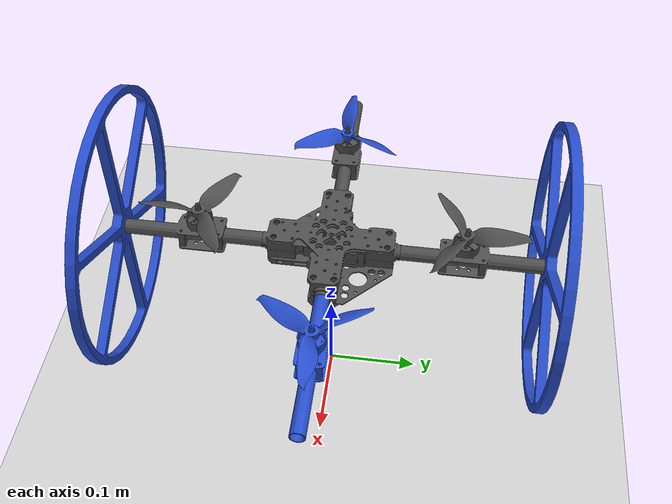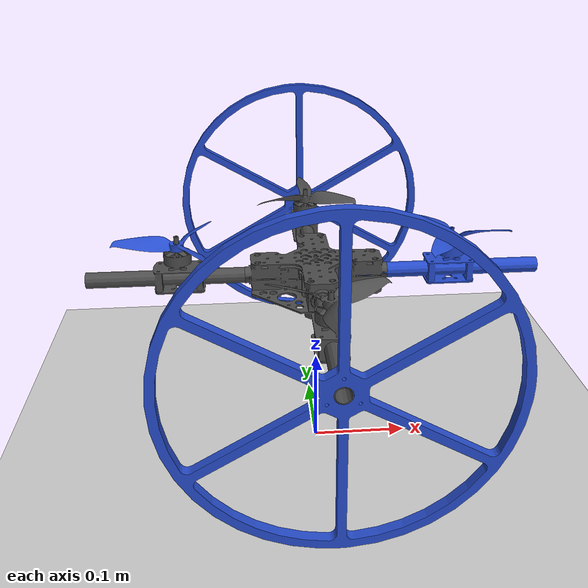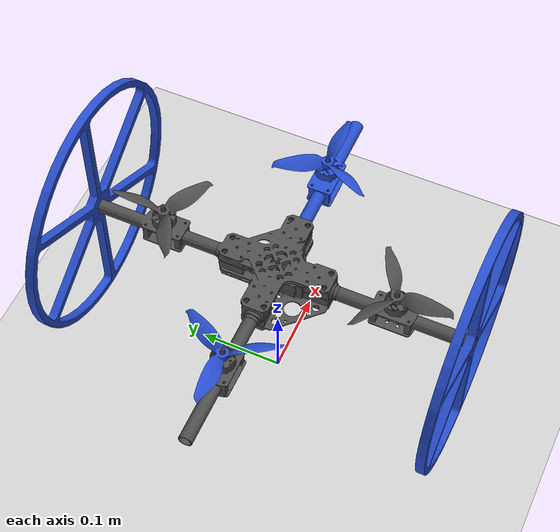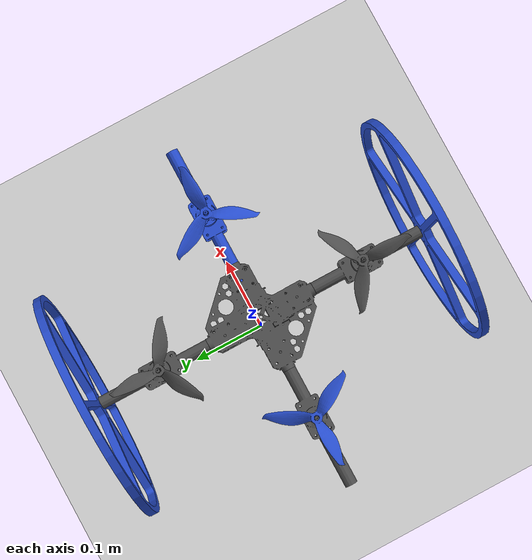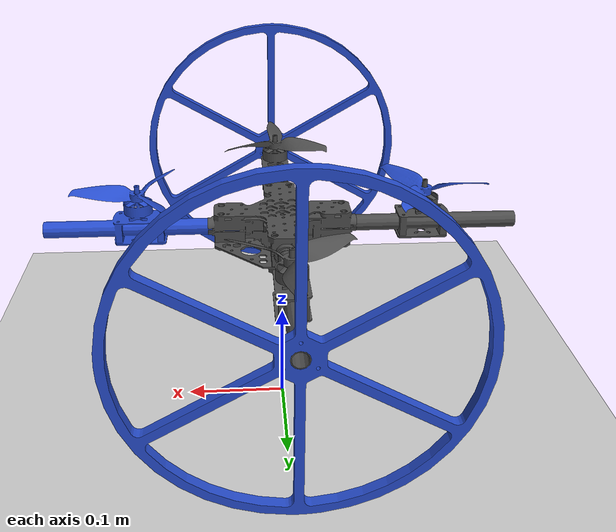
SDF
<?xml version="1.0" ?>
<sdf version="1.5">
  <world name="default">
    <scene>
        <ambient>0.95 0.95 0.95 1</ambient>
        <background>0.98 0.98 0.98 1</background>
        <shadows>true</shadows>
    </scene>

    <include>
      <uri>model://tilt_ropter_hitl</uri>
      <pose>0 0 0.05 0 0 0</pose>
    </include>

    <!-- A global light source -->
    <include>
      <uri>model://sun</uri>
    </include>
    <!-- A ground plane -->
    <include>
      <uri>model://ground_plane</uri>
    </include>
    <include>
      <uri>model://asphalt_plane</uri>
    </include>
    <physics name='default_physics' default='0' type='ode'>
      <gravity>0 0 -9.8066</gravity>
      <ode>
        <solver>
          <type>quick</type>
          <iters>10</iters>
          <sor>1.3</sor>
          <use_dynamic_moi_rescaling>0</use_dynamic_moi_rescaling>
        </solver>
        <constraints>
          <cfm>0</cfm>
          <erp>0.2</erp>
          <contact_max_correcting_vel>100</contact_max_correcting_vel>
          <contact_surface_layer>0.001</contact_surface_layer>
        </constraints>
      </ode>
      <max_step_size>0.004</max_step_size>
      <real_time_factor>1</real_time_factor>
      <real_time_update_rate>250</real_time_update_rate>
      <magnetic_field>6.0e-6 2.3e-5 -4.2e-5</magnetic_field>
    </physics>
    <gui>
      <camera name="user_camera">
        <track_visual>
          <static>true</static>
          <use_model_frame>true</use_model_frame>
          <xyz>-2 -2 1.5</xyz>
          <inherit_yaw>true</inherit_yaw>
        </track_visual>
        <pose>-10 -1 4 0 0.275643 0</pose>
        <view_controller>orbit</view_controller>
        <projection_type>perspective</projection_type>
    </camera>
    </gui>
  </world>
</sdf>

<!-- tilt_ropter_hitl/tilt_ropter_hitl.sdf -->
<!-- Generated from iris.sdf.jinja for use with HITL -->
<sdf version='1.6'>
  <model name='iris'>
    <link name='base_link'>
      <pose>0 0 0.15 0 0 0</pose>
      <inertial>
        <pose>0 0 -0.05 0 0 0</pose>
        <mass>0.8</mass>
        <inertia>
          <ixx>0.029125</ixx>
          <ixy>0</ixy>
          <ixz>0</ixz>
          <iyy>0.029125</iyy>
          <iyz>0</iyz>
          <izz>0.055225</izz>
        </inertia>
      </inertial>

      <collision name='base_link_inertia_collision'>
        <pose>0 0 0 0 0 0</pose>
        <geometry>
          <box>
            <size>0.133 0.133 0.036</size>
          </box>
        </geometry>

        <surface>
          <contact>
            <ode>
              <min_depth>0.001</min_depth>
              <max_vel>0</max_vel>
            </ode>
          </contact>
          <friction>
            <ode/>
          </friction>
        </surface>
      </collision>

      <visual name='base_link_inertia_visual'>
        <pose>0 0 0 0 0 0</pose>
        <geometry>
          <mesh>
            <scale>1 1 1</scale>
            <uri>model://tilt_ropter/meshes/body.STL</uri>
          </mesh>
        </geometry>
        <material>
          <script>
            <name>Gazebo/DarkGrey</name>
            <uri>file://media/materials/scripts/gazebo.material</uri>
          </script>
        </material>
      </visual>
      <gravity>1</gravity>
      <velocity_decay/>
      <self_collide>0</self_collide>
    </link>

    <!-- imu_link -->
    <link name='/imu_link'>
      <pose relative_to='base_link'>0 0 0 0 0 0</pose>
      <inertial>
        <pose>0 0 0 0 0 0</pose>
        <mass>0.015</mass>
        <inertia>
          <ixx>1e-05</ixx>
          <ixy>0</ixy>
          <ixz>0</ixz>
          <iyy>1e-05</iyy>
          <iyz>0</iyz>
          <izz>1e-05</izz>
        </inertia>
      </inertial>
    </link>

    <joint name='/imu_joint' type='revolute'>
      <child>/imu_link</child>
      <parent>base_link</parent>
      <axis>
        <xyz>1 0 0</xyz>
        <limit>
          <lower>0</lower>
          <upper>0</upper>
          <effort>0</effort>
          <velocity>0</velocity>
        </limit>
        <dynamics>
          <spring_reference>0</spring_reference>
          <spring_stiffness>0</spring_stiffness>
        </dynamics>
        <use_parent_model_frame>1</use_parent_model_frame>
      </axis>
    </joint>
    <!-- imu_link -->

    <!-- wheel_0 -->
    <link name='wheel_0'>
      <pose relative_to='base_link'>0 -0.22696 0 1.5708 0 0</pose>
      <inertial>
        <pose>0 0 0 0 0 0</pose>
        <mass>0.2</mass>
        <inertia>
          <ixx>0.002</ixx>
          <ixy>0</ixy>
          <ixz>0</ixz>
          <iyy>0.002</iyy>
          <iyz>0</iyz>
          <izz>0.004</izz>
        </inertia>
      </inertial>

      <collision name='wheel_0_collision'>
        <pose>0 0 0 0 0 0</pose>
        <geometry>
          <cylinder>
            <length>0.01</length>
            <radius>0.15</radius>
          </cylinder>
        </geometry>
        <surface>
          <contact>
            <ode/>
          </contact>
          <friction>
            <ode/>
          </friction>
        </surface>
      </collision>

      <visual name='wheel_0_visual'>
        <pose>0 0 0 0 0 0</pose>
        <geometry>
          <mesh>
            <scale>1 1 1</scale>
            <uri>model://tilt_ropter/meshes/wheel.STL</uri>
          </mesh>
        </geometry>
        <material>
          <script>
            <name>Gazebo/Blue</name>
            <uri>file://media/materials/scripts/gazebo.material</uri>
          </script>
        </material>
      </visual>
      <gravity>1</gravity>
      <velocity_decay/>
      <self_collide>0</self_collide>
    </link>

    <joint name='wheel_0_joint' type='revolute'>
      <child>wheel_0</child>
      <parent>base_link</parent>
      <axis>
        <xyz>0 -1 0</xyz>
        <limit>
          <lower>-1e+16</lower>
          <upper>1e+16</upper>
        </limit>
        <dynamics>
          <spring_reference>0</spring_reference>
          <spring_stiffness>0</spring_stiffness>
        </dynamics>
        <use_parent_model_frame>1</use_parent_model_frame>
      </axis>
    </joint>
    <!-- wheel_0 -->

    <!-- wheel_1 -->
    <link name='wheel_1'>
      <pose relative_to='base_link'>0 0.22696 0 1.5708 0 0</pose>
      <inertial>
        <pose>0 0 0 0 0 0</pose>
        <mass>0.2</mass>
        <inertia>
          <ixx>0.002</ixx>
          <ixy>0</ixy>
          <ixz>0</ixz>
          <iyy>0.002</iyy>
          <iyz>0</iyz>
          <izz>0.004</izz>
        </inertia>
      </inertial>

      <collision name='wheel_1_collision'>
        <pose>0 0 0 0 0 0</pose>
        <geometry>
          <cylinder>
            <length>0.01</length>
            <radius>0.15</radius>
          </cylinder>
        </geometry>
        <surface>
          <contact>
            <ode/>
          </contact>
          <friction>
            <ode/>
          </friction>
        </surface>
      </collision>

      <visual name='wheel_1_visual'>
        <pose>0 0 0 0 0 0</pose>
        <geometry>
          <mesh>
            <scale>1 1 1</scale>
            <uri>model://tilt_ropter/meshes/wheel.STL</uri>
          </mesh>
        </geometry>
        <material>
          <script>
            <name>Gazebo/Blue</name>
            <uri>file://media/materials/scripts/gazebo.material</uri>
          </script>
        </material>
      </visual>
      <gravity>1</gravity>
      <velocity_decay/>
      <self_collide>0</self_collide>
    </link>

    <joint name='wheel_1_joint' type='revolute'>
      <child>wheel_1</child>
      <parent>base_link</parent>
      <axis>
        <xyz>0 -1 0</xyz>
        <limit>
          <lower>-1e+16</lower>
          <upper>1e+16</upper>
        </limit>
        <dynamics>
          <spring_reference>0</spring_reference>
          <spring_stiffness>0</spring_stiffness>
        </dynamics>
        <use_parent_model_frame>1</use_parent_model_frame>
      </axis>
    </joint>

    <!-- tilt_0 -->
    <link name='tilt_0'>
      <pose relative_to='base_link'>0 -0.041958 0 0 0 -1.5708</pose>
      <inertial>
        <pose>0.0 0.0 0.0 0 0 0</pose>
        <mass>0.06</mass>
        <inertia>
          <ixx>0.0001</ixx>
          <ixy>0</ixy>
          <ixz>0</ixz>
          <iyy>0.0001</iyy>
          <iyz>0</iyz>
          <izz>0.0001</izz>
        </inertia>
      </inertial>

      <collision name='tilt_0_collision'>
        <pose>0.095 0 0 0 1.5708 0</pose>
        <geometry>
          <cylinder>
            <length>0.19</length>
            <radius>0.008</radius>
          </cylinder>
        </geometry>
        <surface>
          <contact>
            <ode/>
          </contact>
          <friction>
            <ode/>
          </friction>
        </surface>
      </collision>

      <visual name='tilt_0_visual'>
        <pose>0 0 0 0 0 0</pose>
        <geometry>
          <mesh>
            <scale>1 1 1</scale>
            <uri>model://tilt_ropter/meshes/arm.STL</uri>
          </mesh>
        </geometry>
        <material>
          <script>
            <name>Gazebo/DarkGrey</name>
            <uri>file://media/materials/scripts/gazebo.material</uri>
          </script>
        </material>
      </visual>
      <gravity>1</gravity>
      <velocity_decay/>
      <self_collide>0</self_collide>
    </link>

    <joint name='tilt_0_joint' type='revolute'>
      <child>tilt_0</child>
      <parent>base_link</parent>
      <axis>
        <xyz>0 -1 0</xyz>
        <limit>
          <lower>-1.57</lower>
          <upper>1.57</upper>
        </limit>
        <dynamics>
          <friction>1.0</friction>
          <spring_reference>0</spring_reference>
          <spring_stiffness>0</spring_stiffness>
        </dynamics>
        <use_parent_model_frame>1</use_parent_model_frame>
      </axis>
    </joint>
    <!-- tilt_0 -->

    <!-- rotor_0 -->
    <link name='rotor_0'>
      <pose relative_to='tilt_0'>0.0975 0 0.0297 0 0 0</pose>
      <inertial>
        <pose>0 0 0 0 0 0</pose>
        <mass>0.005</mass>
        <inertia>
          <ixx>9.75e-07</ixx>
          <ixy>0</ixy>
          <ixz>0</ixz>
          <iyy>0.000273104</iyy>
          <iyz>0</iyz>
          <izz>0.000274004</izz>
        </inertia>
      </inertial>

      <collision name='rotor_0_collision'>
        <pose>0 0 0 0 0 0</pose>
        <geometry>
          <cylinder>
            <length>0.005</length>
            <radius>0.064</radius>
          </cylinder>
        </geometry>
        <surface>
          <contact>
            <ode/>
          </contact>
          <friction>
            <ode/>
          </friction>
        </surface>
      </collision>

      <visual name='rotor_0_visual'>
        <pose>0 0 0 0 0 0</pose>
        <geometry>
          <mesh>
            <scale>1 1 1</scale>
            <uri>model://tilt_ropter/meshes/prop_ccw.STL</uri>
          </mesh>
        </geometry>
        <material>
          <script>
            <name>Gazebo/DarkGrey</name>
            <uri>file://media/materials/scripts/gazebo.material</uri>
          </script>
        </material>
      </visual>

      <gravity>1</gravity>
      <velocity_decay/>
      <self_collide>0</self_collide>
    </link>

    <joint name='rotor_0_joint' type='revolute'>
      <child>rotor_0</child>
      <parent>tilt_0</parent>
      <axis>
        <xyz>0 0 1</xyz>
        <limit>
          <lower>-1e+16</lower>
          <upper>1e+16</upper>
        </limit>
        <dynamics>
          <spring_reference>0</spring_reference>
          <spring_stiffness>0</spring_stiffness>
        </dynamics>
        <use_parent_model_frame>1</use_parent_model_frame>
      </axis>
    </joint>
    <!-- rotor_0 -->

    <!-- tilt_1 -->
    <link name='tilt_1'>
      <pose relative_to='base_link'>0 0.041958 0 0 0 1.5708</pose>
      <inertial>
        <pose>0.0 0.0 0.0 0 0 0</pose>
        <mass>0.06</mass>
        <inertia>
          <ixx>0.0001</ixx>
          <ixy>0</ixy>
          <ixz>0</ixz>
          <iyy>0.0001</iyy>
          <iyz>0</iyz>
          <izz>0.0001</izz>
        </inertia>
      </inertial>

      <collision name='tilt_1_collision'>
        <pose>0.095 0 0 0 1.5708 0</pose>
        <geometry>
          <cylinder>
            <length>0.19</length>
            <radius>0.008</radius>
          </cylinder>
        </geometry>
        <surface>
          <contact>
            <ode/>
          </contact>
          <friction>
            <ode/>
          </friction>
        </surface>
      </collision>

      <visual name='tilt_1_visual'>
        <pose>0 0 0 0 0 0</pose>
        <geometry>
          <mesh>
            <scale>1 1 1</scale>
            <uri>model://tilt_ropter/meshes/arm.STL</uri>
          </mesh>
        </geometry>
        <material>
          <script>
            <name>Gazebo/DarkGrey</name>
            <uri>file://media/materials/scripts/gazebo.material</uri>
          </script>
        </material>
      </visual>

      <gravity>1</gravity>
      <velocity_decay/>
      <self_collide>0</self_collide>
    </link>

    <joint name='tilt_1_joint' type='revolute'>
      <child>tilt_1</child>
      <parent>base_link</parent>
      <axis>
        <xyz>0 1 0</xyz>
        <limit>
          <lower>-1.57</lower>
          <upper>1.57</upper>
        </limit>
        <dynamics>
          <friction>1.0</friction>
          <spring_reference>0</spring_reference>
          <spring_stiffness>0</spring_stiffness>
        </dynamics>
        <use_parent_model_frame>1</use_parent_model_frame>
      </axis>
    </joint>
    <!-- tilt_1 -->

    <!-- rotor_1 -->
    <link name='rotor_1'>
      <pose relative_to='tilt_1'>0.0975 0 0.0297 0 0 0</pose>
      <inertial>
        <pose>0 0 0 0 0 0</pose>
        <mass>0.005</mass>
        <inertia>
          <ixx>9.75e-07</ixx>
          <ixy>0</ixy>
          <ixz>0</ixz>
          <iyy>0.000273104</iyy>
          <iyz>0</iyz>
          <izz>0.000274004</izz>
        </inertia>
      </inertial>

      <collision name='rotor_1_collision'>
        <pose>0 0 0 0 0 0</pose>
        <geometry>
          <cylinder>
            <length>0.005</length>
            <radius>0.064</radius>
          </cylinder>
        </geometry>
        <surface>
          <contact>
            <ode/>
          </contact>
          <friction>
            <ode/>
          </friction>
        </surface>
      </collision>

      <visual name='rotor_1_visual'>
        <pose>0 0 0 0 0 0</pose>
        <geometry>
          <mesh>
            <scale>1 1 1</scale>
            <uri>model://tilt_ropter/meshes/prop_ccw.STL</uri>
          </mesh>
        </geometry>
        <material>
          <script>
            <name>Gazebo/DarkGrey</name>
            <uri>file://media/materials/scripts/gazebo.material</uri>
          </script>
        </material>
      </visual>

      <gravity>1</gravity>
      <velocity_decay/>
      <self_collide>0</self_collide>
    </link>

    <joint name='rotor_1_joint' type='revolute'>
      <child>rotor_1</child>
      <parent>tilt_1</parent>
      <axis>
        <xyz>0 0 1</xyz>
        <limit>
          <lower>-1e+16</lower>
          <upper>1e+16</upper>
        </limit>
        <dynamics>
          <spring_reference>0</spring_reference>
          <spring_stiffness>0</spring_stiffness>
        </dynamics>
        <use_parent_model_frame>1</use_parent_model_frame>
      </axis>
    </joint>
    <!-- rotor_1 -->

    <!-- tilt_2 -->
    <link name='tilt_2'>
      <pose relative_to='base_link'>0.041958 0 0 0 0 0</pose>
      <inertial>
        <pose>0.0 0.0 0.0 0 0 0</pose>
        <mass>0.06</mass>
        <inertia>
          <ixx>0.0001</ixx>
          <ixy>0</ixy>
          <ixz>0</ixz>
          <iyy>0.0001</iyy>
          <iyz>0</iyz>
          <izz>0.0001</izz>
        </inertia>
      </inertial>

      <collision name='tilt_2_collision'>
        <pose>0.095 0 0 0 1.5708 0</pose>
        <geometry>
          <cylinder>
            <length>0.19</length>
            <radius>0.008</radius>
          </cylinder>
        </geometry>
        <surface>
          <contact>
            <ode/>
          </contact>
          <friction>
            <ode/>
          </friction>
        </surface>
      </collision>

      <visual name='tilt_2_visual'>
        <pose>0 0 0 0 0 0</pose>
        <geometry>
          <mesh>
            <scale>1 1 1</scale>
            <uri>model://tilt_ropter/meshes/arm.STL</uri>
          </mesh>
        </geometry>
        <material>
          <script>
            <name>Gazebo/Blue</name>
            <uri>file://media/materials/scripts/gazebo.material</uri>
          </script>
        </material>
      </visual>
      <gravity>1</gravity>
      <velocity_decay/>
      <self_collide>0</self_collide>
    </link>
    <joint name='tilt_2_joint' type='revolute'>
      <child>tilt_2</child>
      <parent>base_link</parent>
      <axis>
        <xyz>1 0 0</xyz>
        <limit>
          <lower>-1.57</lower>
          <upper>1.57</upper>
        </limit>
        <dynamics>
          <friction>1.0</friction>
          <spring_reference>0</spring_reference>
          <spring_stiffness>0</spring_stiffness>
        </dynamics>
        <use_parent_model_frame>1</use_parent_model_frame>
      </axis>
    </joint>
    <!-- tilt_2 -->

    <!-- rotor_2 -->
    <link name='rotor_2'>
      <pose relative_to='tilt_2'>0.09775 0 0.0297 0 0 0</pose>
      <inertial>
        <pose>0 0 0 0 0 0</pose>
        <mass>0.005</mass>
        <inertia>
          <ixx>9.75e-07</ixx>
          <ixy>0</ixy>
          <ixz>0</ixz>
          <iyy>0.000273104</iyy>
          <iyz>0</iyz>
          <izz>0.000274004</izz>
        </inertia>
      </inertial>

      <collision name='rotor_2_collision'>
        <pose>0 0 0 0 0 0</pose>
        <geometry>
          <cylinder>
            <length>0.005</length>
            <radius>0.064</radius>
          </cylinder>
        </geometry>
        <surface>
          <contact>
            <ode/>
          </contact>
          <friction>
            <ode/>
          </friction>
        </surface>
      </collision>

      <visual name='rotor_2_visual'>
        <pose>0 0 0 0 0 0</pose>
        <geometry>
          <mesh>
            <scale>1 1 1</scale>
            <uri>model://tilt_ropter/meshes/prop_cw.STL</uri>
          </mesh>
        </geometry>
        <material>
          <script>
            <name>Gazebo/Blue</name>
            <uri>file://media/materials/scripts/gazebo.material</uri>
          </script>
        </material>
      </visual>

      <gravity>1</gravity>
      <velocity_decay/>
      <self_collide>0</self_collide>
    </link>

    <joint name='rotor_2_joint' type='revolute'>
      <child>rotor_2</child>
      <parent>tilt_2</parent>
      <axis>
        <xyz>0 0 1</xyz>
        <limit>
          <lower>-1e+16</lower>
          <upper>1e+16</upper>
        </limit>
        <dynamics>
          <spring_reference>0</spring_reference>
          <spring_stiffness>0</spring_stiffness>
        </dynamics>
        <use_parent_model_frame>1</use_parent_model_frame>
      </axis>
    </joint>
    <!-- rotor_2 -->

    <!-- tilt_3 -->
    <link name='tilt_3'>
      <pose relative_to='base_link'>-0.041958 0 0 0 0 -3.1416</pose>
      <inertial>
        <pose>0.0 0.0 0.0 0 0 0</pose>
        <mass>0.06</mass>
        <inertia>
          <ixx>0.0001</ixx>
          <ixy>0</ixy>
          <ixz>0</ixz>
          <iyy>0.0001</iyy>
          <iyz>0</iyz>
          <izz>0.0001</izz>
        </inertia>
      </inertial>

      <collision name='tilt_3_collision'>
        <pose>0.095 0 0 0 1.5708 0</pose>
        <geometry>
          <cylinder>
            <length>0.19</length>
            <radius>0.008</radius>
          </cylinder>
        </geometry>
        <surface>
          <contact>
            <ode/>
          </contact>
          <friction>
            <ode/>
          </friction>
        </surface>
      </collision>

      <visual name='tilt_3_visual'>
        <pose>0 0 0 0 0 0</pose>
        <geometry>
          <mesh>
            <scale>1 1 1</scale>
            <uri>model://tilt_ropter/meshes/arm.STL</uri>
          </mesh>
        </geometry>
        <material>
          <script>
            <name>Gazebo/DarkGrey</name>
            <uri>file://media/materials/scripts/gazebo.material</uri>
          </script>
        </material>
      </visual>
      <gravity>1</gravity>
      <velocity_decay/>
      <self_collide>0</self_collide>
    </link>

    <joint name='tilt_3_joint' type='revolute'>
      <child>tilt_3</child>
      <parent>base_link</parent>
      <axis>
        <xyz>-1 0 0</xyz>
        <limit>
          <lower>-1.57</lower>
          <upper>1.57</upper>
        </limit>
        <dynamics>
          <friction>1.0</friction>
          <spring_reference>0</spring_reference>
          <spring_stiffness>0</spring_stiffness>
        </dynamics>
        <use_parent_model_frame>1</use_parent_model_frame>
      </axis>
    </joint>
    <!-- tilt_3 -->

    <!-- rotor_3 -->
    <link name='rotor_3'>
      <pose relative_to='tilt_3'>0.09775 0 0.0297 0 0 0</pose>
      <inertial>
        <pose>0 0 0 0 0 0</pose>
        <mass>0.005</mass>
        <inertia>
          <ixx>9.75e-07</ixx>
          <ixy>0</ixy>
          <ixz>0</ixz>
          <iyy>0.000273104</iyy>
          <iyz>0</iyz>
          <izz>0.000274004</izz>
        </inertia>
      </inertial>

      <collision name='rotor_3_collision'>
        <pose>0 0 0 0 0 0</pose>
        <geometry>
          <cylinder>
            <length>0.005</length>
            <radius>0.064</radius>
          </cylinder>
        </geometry>
        <surface>
          <contact>
            <ode/>
          </contact>
          <friction>
            <ode/>
          </friction>
        </surface>
      </collision>

      <visual name='rotor_3_visual'>
        <pose>0 0 0 0 0 0</pose>
        <geometry>
          <mesh>
            <scale>1 1 1</scale>
            <uri>model://tilt_ropter/meshes/prop_cw.STL</uri>
          </mesh>
        </geometry>
        <material>
          <script>
            <name>Gazebo/Blue</name>
            <uri>file://media/materials/scripts/gazebo.material</uri>
          </script>
        </material>
      </visual>

      <gravity>1</gravity>
      <velocity_decay/>
      <self_collide>0</self_collide>
    </link>

    <joint name='rotor_3_joint' type='revolute'>
      <child>rotor_3</child>
      <parent>tilt_3</parent>
      <axis>
        <xyz>0 0 1</xyz>
        <limit>
          <lower>-1e+16</lower>
          <upper>1e+16</upper>
        </limit>
        <dynamics>
          <spring_reference>0</spring_reference>
          <spring_stiffness>0</spring_stiffness>
        </dynamics>
        <use_parent_model_frame>1</use_parent_model_frame>
      </axis>
    </joint>
    <!-- rotor_3 -->

    <!-- Plugin -->
    <plugin name='rosbag' filename='libgazebo_multirotor_base_plugin.so'>
      <robotNamespace/>
      <linkName>base_link</linkName>
      <rotorVelocitySlowdownSim>10</rotorVelocitySlowdownSim>
    </plugin>
    <plugin name='motor_0_model' filename='libgazebo_motor_model.so'>
      <robotNamespace/>
      <jointName>rotor_0_joint</jointName>
      <linkName>rotor_0</linkName>
      <turningDirection>ccw</turningDirection>
      <timeConstantUp>0.0125</timeConstantUp>
      <timeConstantDown>0.025</timeConstantDown>
      <maxRotVelocity>1100</maxRotVelocity>
      <motorConstant>5.84e-06</motorConstant>
      <momentConstant>0.06</momentConstant>
      <commandSubTopic>/gazebo/command/motor_speed</commandSubTopic>
      <motorNumber>0</motorNumber>
      <rotorDragCoefficient>0.000175</rotorDragCoefficient>
      <rollingMomentCoefficient>1e-06</rollingMomentCoefficient>
      <motorSpeedPubTopic>/motor_speed/0</motorSpeedPubTopic>
      <rotorVelocitySlowdownSim>10</rotorVelocitySlowdownSim>
    </plugin>
    <plugin name='motor_1_model' filename='libgazebo_motor_model.so'>
      <robotNamespace/>
      <jointName>rotor_1_joint</jointName>
      <linkName>rotor_1</linkName>
      <turningDirection>ccw</turningDirection>
      <timeConstantUp>0.0125</timeConstantUp>
      <timeConstantDown>0.025</timeConstantDown>
      <maxRotVelocity>1100</maxRotVelocity>
      <motorConstant>5.84e-06</motorConstant>
      <momentConstant>0.06</momentConstant>
      <commandSubTopic>/gazebo/command/motor_speed</commandSubTopic>
      <motorNumber>1</motorNumber>
      <rotorDragCoefficient>0.000175</rotorDragCoefficient>
      <rollingMomentCoefficient>1e-06</rollingMomentCoefficient>
      <motorSpeedPubTopic>/motor_speed/1</motorSpeedPubTopic>
      <rotorVelocitySlowdownSim>10</rotorVelocitySlowdownSim>
    </plugin>
    <plugin name='motor_2_model' filename='libgazebo_motor_model.so'>
      <robotNamespace/>
      <jointName>rotor_2_joint</jointName>
      <linkName>rotor_2</linkName>
      <turningDirection>cw</turningDirection>
      <timeConstantUp>0.0125</timeConstantUp>
      <timeConstantDown>0.025</timeConstantDown>
      <maxRotVelocity>1100</maxRotVelocity>
      <motorConstant>5.84e-06</motorConstant>
      <momentConstant>0.06</momentConstant>
      <commandSubTopic>/gazebo/command/motor_speed</commandSubTopic>
      <motorNumber>2</motorNumber>
      <rotorDragCoefficient>0.000175</rotorDragCoefficient>
      <rollingMomentCoefficient>1e-06</rollingMomentCoefficient>
      <motorSpeedPubTopic>/motor_speed/2</motorSpeedPubTopic>
      <rotorVelocitySlowdownSim>10</rotorVelocitySlowdownSim>
    </plugin>
    <plugin name='motor_3_model' filename='libgazebo_motor_model.so'>
      <robotNamespace/>
      <jointName>rotor_3_joint</jointName>
      <linkName>rotor_3</linkName>
      <turningDirection>cw</turningDirection>
      <timeConstantUp>0.0125</timeConstantUp>
      <timeConstantDown>0.025</timeConstantDown>
      <maxRotVelocity>1100</maxRotVelocity>
      <motorConstant>5.84e-06</motorConstant>
      <momentConstant>0.06</momentConstant>
      <commandSubTopic>/gazebo/command/motor_speed</commandSubTopic>
      <motorNumber>3</motorNumber>
      <rotorDragCoefficient>0.000175</rotorDragCoefficient>
      <rollingMomentCoefficient>1e-06</rollingMomentCoefficient>
      <motorSpeedPubTopic>/motor_speed/3</motorSpeedPubTopic>
      <rotorVelocitySlowdownSim>10</rotorVelocitySlowdownSim>
    </plugin>
    <model name='gps0'>
      <link name='link'>
        <pose>0 0 0 0 0 0</pose>
        <inertial>
          <pose>0 0 0 0 0 0</pose>
          <mass>0.01</mass>
          <inertia>
            <ixx>2.1733e-06</ixx>
            <ixy>0</ixy>
            <ixz>0</ixz>
            <iyy>2.1733e-06</iyy>
            <iyz>0</iyz>
            <izz>1.8e-07</izz>
          </inertia>
        </inertial>
        <sensor name='gps' type='gps'>
          <pose>0 0 0 0 0 0</pose>
          <plugin name='gps_plugin' filename='libgazebo_gps_plugin.so'>
            <robotNamespace/>
            <gpsNoise>1</gpsNoise>
            <gpsXYRandomWalk>2.0</gpsXYRandomWalk>
            <gpsZRandomWalk>4.0</gpsZRandomWalk>
            <gpsXYNoiseDensity>0.0002</gpsXYNoiseDensity>
            <gpsZNoiseDensity>0.0004</gpsZNoiseDensity>
            <gpsVXYNoiseDensity>0.2</gpsVXYNoiseDensity>
            <gpsVZNoiseDensity>0.4</gpsVZNoiseDensity>
          </plugin>
        </sensor>
      </link>
    </model>
    <joint name='gps0_joint' type='fixed'>
      <parent>base_link</parent>
      <child>gps0::link</child>
    </joint>
    <plugin name='groundtruth_plugin' filename='libgazebo_groundtruth_plugin.so'>
      <robotNamespace/>
    </plugin>
    <plugin name='magnetometer_plugin' filename='libgazebo_magnetometer_plugin.so'>
      <robotNamespace/>
      <pubRate>100</pubRate>
      <noiseDensity>0.0004</noiseDensity>
      <randomWalk>6.4e-06</randomWalk>
      <biasCorrelationTime>600</biasCorrelationTime>
      <magTopic>/mag</magTopic>
    </plugin>
    <plugin name='barometer_plugin' filename='libgazebo_barometer_plugin.so'>
      <robotNamespace/>
      <pubRate>50</pubRate>
      <baroTopic>/baro</baroTopic>
      <baroDriftPaPerSec>0</baroDriftPaPerSec>
    </plugin>
    <plugin name='mavlink_interface' filename='libgazebo_mavlink_interface.so'>
      <robotNamespace/>
      <imuSubTopic>/imu</imuSubTopic>
      <magSubTopic>/mag</magSubTopic>
      <baroSubTopic>/baro</baroSubTopic>
      <mavlink_addr>INADDR_ANY</mavlink_addr>
      <mavlink_tcp_port>4560</mavlink_tcp_port>
      <mavlink_udp_port>14560</mavlink_udp_port>
      <serialEnabled>1</serialEnabled>
      <serialDevice>/dev/ttyACM0</serialDevice>
      <baudRate>921600</baudRate>
      <qgc_addr>INADDR_ANY</qgc_addr>
      <qgc_udp_port>14550</qgc_udp_port>
      <sdk_addr>INADDR_ANY</sdk_addr>
      <sdk_udp_port>14540</sdk_udp_port>
      <hil_mode>1</hil_mode>
      <hil_state_level>0</hil_state_level>
      <send_vision_estimation>0</send_vision_estimation>
      <send_odometry>1</send_odometry>
      <enable_lockstep>0</enable_lockstep>
      <use_tcp>0</use_tcp>
      <motorSpeedCommandPubTopic>/gazebo/command/motor_speed</motorSpeedCommandPubTopic>
      <control_channels>
        <channel name='rotor1'>
          <input_index>0</input_index>
          <input_offset>0</input_offset>
          <input_scaling>1000</input_scaling>
          <zero_position_disarmed>0</zero_position_disarmed>
          <zero_position_armed>100</zero_position_armed>
          <joint_control_type>velocity</joint_control_type>
        </channel>
        <channel name='rotor2'>
          <input_index>1</input_index>
          <input_offset>0</input_offset>
          <input_scaling>1000</input_scaling>
          <zero_position_disarmed>0</zero_position_disarmed>
          <zero_position_armed>100</zero_position_armed>
          <joint_control_type>velocity</joint_control_type>
        </channel>
        <channel name='rotor3'>
          <input_index>2</input_index>
          <input_offset>0</input_offset>
          <input_scaling>1000</input_scaling>
          <zero_position_disarmed>0</zero_position_disarmed>
          <zero_position_armed>100</zero_position_armed>
          <joint_control_type>velocity</joint_control_type>
        </channel>
        <channel name='rotor4'>
          <input_index>3</input_index>
          <input_offset>0</input_offset>
          <input_scaling>1000</input_scaling>
          <zero_position_disarmed>0</zero_position_disarmed>
          <zero_position_armed>100</zero_position_armed>
          <joint_control_type>velocity</joint_control_type>
        </channel>

        <channel name='tilt0'>
          <input_index>4</input_index>
          <input_offset>0</input_offset>
          <input_scaling>1.57</input_scaling>
          <zero_position_disarmed>0</zero_position_disarmed>
          <zero_position_armed>0</zero_position_armed>
          <joint_control_type>position</joint_control_type>
          <joint_name>tilt_0_joint</joint_name>
          <joint_control_pid>
            <p>10</p>
            <i>0.0</i>
            <d>0</d>
            <iMax>0.0</iMax>
            <iMin>0.0</iMin>
            <cmdMax>2</cmdMax>
            <cmdMin>-2</cmdMin>
            <errMax>0.2</errMax>
          </joint_control_pid>
        </channel>

        <channel name='tilt1'>
          <input_index>5</input_index>
          <input_offset>0</input_offset>
          <input_scaling>1.57</input_scaling>
          <zero_position_disarmed>0</zero_position_disarmed>
          <zero_position_armed>0</zero_position_armed>
          <joint_control_type>position</joint_control_type>
          <joint_name>tilt_1_joint</joint_name>
          <joint_control_pid>
            <p>10</p>
            <i>0.0</i>
            <d>0</d>
            <iMax>0.0</iMax>
            <iMin>0.0</iMin>
            <cmdMax>2</cmdMax>
            <cmdMin>-2</cmdMin>
            <errMax>0.2</errMax>
          </joint_control_pid>
        </channel>

        <channel name='tilt2'>
          <input_index>6</input_index>
          <input_offset>0</input_offset>
          <input_scaling>1.57</input_scaling>
          <zero_position_disarmed>0</zero_position_disarmed>
          <zero_position_armed>0</zero_position_armed>
          <joint_control_type>position</joint_control_type>
          <joint_name>tilt_2_joint</joint_name>
          <joint_control_pid>
            <p>10</p>
            <i>0.0</i>
            <d>0</d>
            <iMax>0.0</iMax>
            <iMin>0.0</iMin>
            <cmdMax>2</cmdMax>
            <cmdMin>-2</cmdMin>
            <errMax>0.2</errMax>
          </joint_control_pid>
        </channel>

        <channel name='tilt3'>
          <input_index>7</input_index>
          <input_offset>0</input_offset>
          <input_scaling>1.57</input_scaling>
          <zero_position_disarmed>0</zero_position_disarmed>
          <zero_position_armed>0</zero_position_armed>
          <joint_control_type>position</joint_control_type>
          <joint_name>tilt_3_joint</joint_name>
          <joint_control_pid>
            <p>10</p>
            <i>0.0</i>
            <d>0</d>
            <iMax>0.0</iMax>
            <iMin>0.0</iMin>
            <cmdMax>2</cmdMax>
            <cmdMin>-2</cmdMin>
            <errMax>0.2</errMax>
          </joint_control_pid>
        </channel>
      </control_channels>
    </plugin>
    <static>0</static>
    <plugin name='rotors_gazebo_imu_plugin' filename='libgazebo_imu_plugin.so'>
      <robotNamespace/>
      <linkName>/imu_link</linkName>
      <imuTopic>/imu</imuTopic>
      <gyroscopeNoiseDensity>0.00018665</gyroscopeNoiseDensity>
      <gyroscopeRandomWalk>3.8785e-05</gyroscopeRandomWalk>
      <gyroscopeBiasCorrelationTime>1000.0</gyroscopeBiasCorrelationTime>
      <gyroscopeTurnOnBiasSigma>0.0087</gyroscopeTurnOnBiasSigma>
      <accelerometerNoiseDensity>0.00186</accelerometerNoiseDensity>
      <accelerometerRandomWalk>0.006</accelerometerRandomWalk>
      <accelerometerBiasCorrelationTime>300.0</accelerometerBiasCorrelationTime>
      <accelerometerTurnOnBiasSigma>0.196</accelerometerTurnOnBiasSigma>
    </plugin>
  </model>
</sdf>
